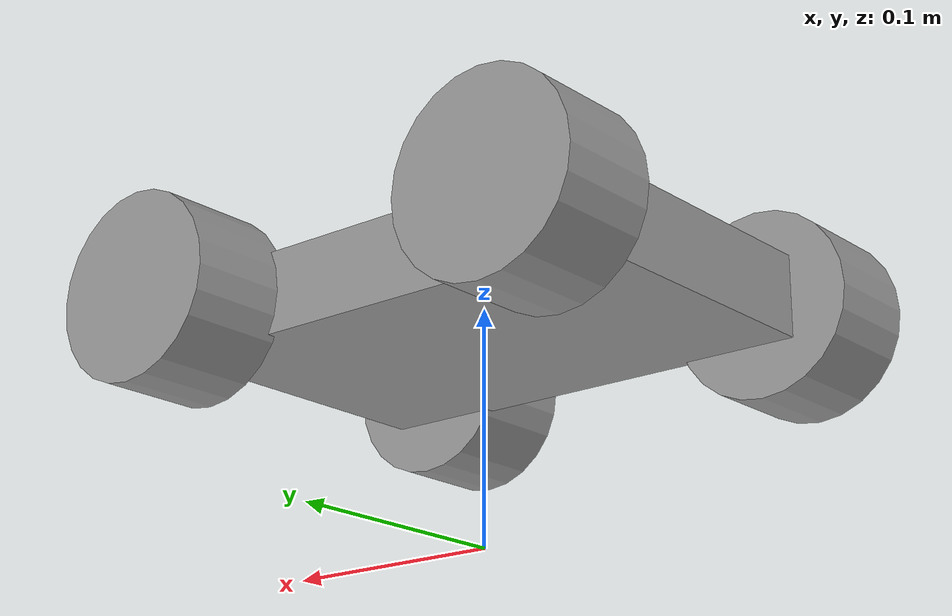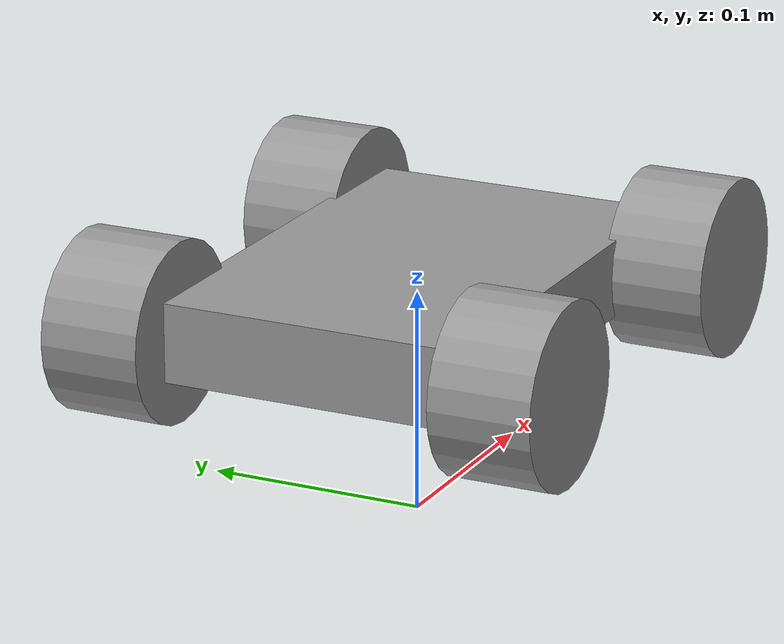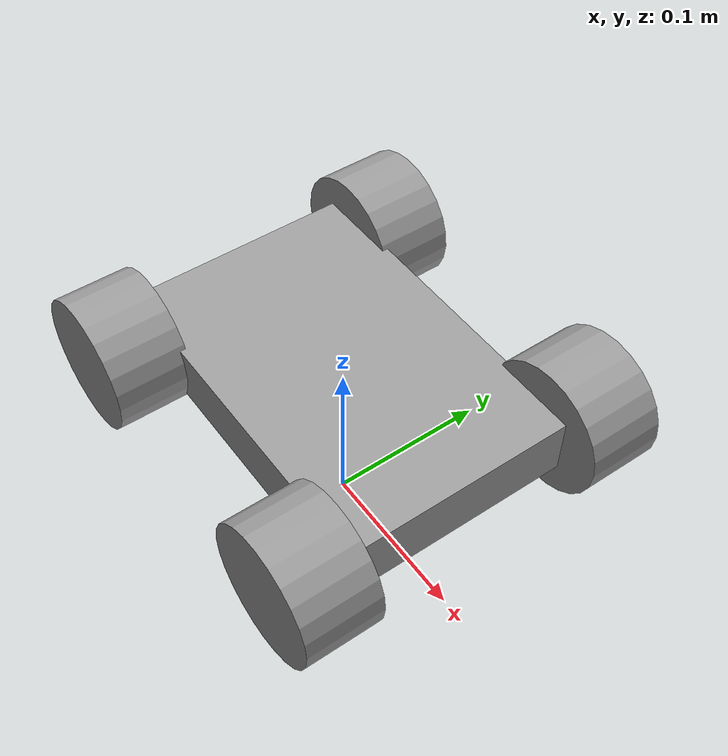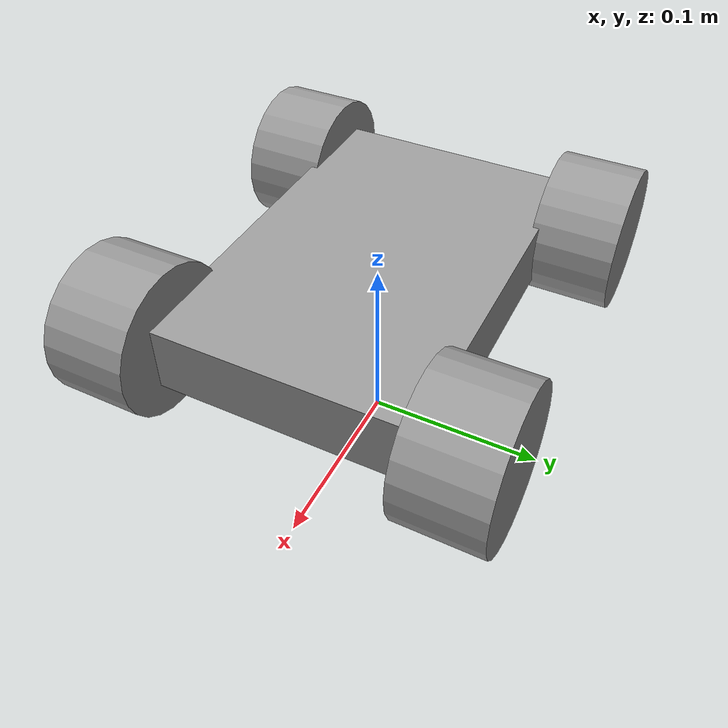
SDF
<?xml version='1.0'?>
<sdf version='1.7'>
  <model name='sa_car'>
    <link name='chassis'>
      <inertial>
        <mass>1.5</mass>
        <inertia>
          <ixx>0.002603125</ixx>
          <ixy>0</ixy>
          <ixz>0</ixz>
          <iyy>0.005665625</iyy>
          <iyz>0</iyz>
          <izz>0.0079625</izz>
        </inertia>
        <pose>0 0 0 0 -0 0</pose>
      </inertial>
      <self_collide>0</self_collide>
      <enable_wind>0</enable_wind>
      <kinematic>0</kinematic>
      <pose>0 0 0.1 0 -0 0</pose>
      <gravity>1</gravity>
      <visual name='visual'>
        <geometry>
          <box>
            <size>0.21 0.14 0.035</size>
          </box>
        </geometry>
        <material>
          <script>
            <name>Gazebo/Gray</name>
            <uri>file://media/materials/scripts/gazebo.material</uri>
          </script>
          <shader type='pixel'>
            <normal_map>__default__</normal_map>
          </shader>
          <ambient>0.3 0.3 0.3 1</ambient>
          <diffuse>0.7 0.7 0.7 1</diffuse>
          <specular>0.01 0.01 0.01 1</specular>
          <emissive>0 0 0 1</emissive>
        </material>
        <pose>0 0 0 0 -0 0</pose>
        <transparency>0</transparency>
        <cast_shadows>1</cast_shadows>
      </visual>
      <collision name='collision'>
        <laser_retro>0</laser_retro>
        <max_contacts>10</max_contacts>
        <pose>0 0 0 0 -0 0</pose>
        <geometry>
          <box>
            <size>0.21 0.14 0.035</size>
          </box>
        </geometry>
        <surface>
          <friction>
            <ode>
              <mu>1</mu>
              <mu2>1</mu2>
              <fdir1>0 0 0</fdir1>
              <slip1>0</slip1>
              <slip2>0</slip2>
            </ode>
            <torsional>
              <coefficient>1</coefficient>
              <patch_radius>0</patch_radius>
              <surface_radius>0</surface_radius>
              <use_patch_radius>1</use_patch_radius>
              <ode>
                <slip>0</slip>
              </ode>
            </torsional>
          </friction>
          <bounce>
            <restitution_coefficient>0</restitution_coefficient>
            <threshold>1e+06</threshold>
          </bounce>
          <contact>
            <collide_without_contact>0</collide_without_contact>
            <collide_without_contact_bitmask>1</collide_without_contact_bitmask>
            <collide_bitmask>1</collide_bitmask>
            <ode>
              <soft_cfm>0</soft_cfm>
              <soft_erp>0.2</soft_erp>
              <kp>1e+13</kp>
              <kd>1</kd>
              <max_vel>0.01</max_vel>
              <min_depth>0</min_depth>
            </ode>
            <bullet>
              <split_impulse>1</split_impulse>
              <split_impulse_penetration_threshold>-0.01</split_impulse_penetration_threshold>
              <soft_cfm>0</soft_cfm>
              <soft_erp>0.2</soft_erp>
              <kp>1e+13</kp>
              <kd>1</kd>
            </bullet>
          </contact>
        </surface>
      </collision>
    </link>
    <link name='front_left_steer_link'>
      <inertial>
        <mass>0.05</mass>
        <inertia>
          <ixx>8.33e-05</ixx>
          <ixy>0</ixy>
          <ixz>0</ixz>
          <iyy>8.33e-05</iyy>
          <iyz>0</iyz>
          <izz>8.33e-05</izz>
        </inertia>
        <pose>0 0 0 0 -0 0</pose>
      </inertial>
      <pose>0.0895 0.0685 0.1 0 -0 0</pose>
      <gravity>1</gravity>
      <self_collide>0</self_collide>
      <kinematic>0</kinematic>
      <enable_wind>0</enable_wind>
    </link>
    <link name='front_left_wheel'>
      <inertial>
        <mass>0.1</mass>
        <inertia>
          <ixx>5.7e-05</ixx>
          <ixy>0</ixy>
          <ixz>0</ixz>
          <iyy>5.7e-05</iyy>
          <iyz>0</iyz>
          <izz>8e-05</izz>
        </inertia>
        <pose>0 0 0 0 -0 0</pose>
      </inertial>
      <pose>0.0895 0.089 0.1 1.5707 -0 0</pose>
      <gravity>1</gravity>
      <self_collide>0</self_collide>
      <kinematic>0</kinematic>
      <enable_wind>0</enable_wind>
      <visual name='visual'>
        <pose>0 0 0 0 -0 0</pose>
        <geometry>
          <cylinder>
            <radius>0.04</radius>
            <length>0.045</length>
          </cylinder>
        </geometry>
        <material>
          <lighting>1</lighting>
          <script>
            <uri>file://media/materials/scripts/gazebo.material</uri>
            <name>Gazebo/Grey</name>
          </script>
          <shader type='pixel'>
            <normal_map>__default__</normal_map>
          </shader>
          <ambient>0.3 0.3 0.3 1</ambient>
          <diffuse>0.7 0.7 0.7 1</diffuse>
          <specular>0.01 0.01 0.01 1</specular>
          <emissive>0 0 0 1</emissive>
        </material>
        <transparency>0</transparency>
        <cast_shadows>1</cast_shadows>
      </visual>
      <collision name='collision'>
        <laser_retro>0</laser_retro>
        <max_contacts>10</max_contacts>
        <pose>0 0 0 0 -0 0</pose>
        <geometry>
          <cylinder>
            <radius>0.04</radius>
            <length>0.045</length>
          </cylinder>
        </geometry>
        <surface>
          <friction>
            <ode>
              <mu>1</mu>
              <mu2>1</mu2>
              <fdir1>0 0 1</fdir1>
              <slip1>0</slip1>
              <slip2>0</slip2>
            </ode>
            <torsional>
              <coefficient>1</coefficient>
              <patch_radius>0</patch_radius>
              <surface_radius>0</surface_radius>
              <use_patch_radius>1</use_patch_radius>
              <ode>
                <slip>0</slip>
              </ode>
            </torsional>
          </friction>
          <bounce>
            <restitution_coefficient>0</restitution_coefficient>
            <threshold>1e+06</threshold>
          </bounce>
          <contact>
            <collide_without_contact>0</collide_without_contact>
            <collide_without_contact_bitmask>1</collide_without_contact_bitmask>
            <collide_bitmask>1</collide_bitmask>
            <ode>
              <soft_cfm>0</soft_cfm>
              <soft_erp>0.2</soft_erp>
              <kp>1e+13</kp>
              <kd>1</kd>
              <max_vel>0.01</max_vel>
              <min_depth>0</min_depth>
            </ode>
            <bullet>
              <split_impulse>1</split_impulse>
              <split_impulse_penetration_threshold>-0.01</split_impulse_penetration_threshold>
              <soft_cfm>0</soft_cfm>
              <soft_erp>0.2</soft_erp>
              <kp>1e+13</kp>
              <kd>1</kd>
            </bullet>
          </contact>
        </surface>
      </collision>
    </link>
    <link name='front_right_steer_link'>
      <inertial>
        <mass>0.05</mass>
        <inertia>
          <ixx>8.33e-05</ixx>
          <ixy>0</ixy>
          <ixz>0</ixz>
          <iyy>8.33e-05</iyy>
          <iyz>0</iyz>
          <izz>8.33e-05</izz>
        </inertia>
        <pose>0 0 0 0 -0 0</pose>
      </inertial>
      <pose>0.0895 -0.0685 0.1 0 -0 0</pose>
      <gravity>1</gravity>
      <self_collide>0</self_collide>
      <kinematic>0</kinematic>
      <enable_wind>0</enable_wind>
    </link>
    <link name='front_right_wheel'>
      <inertial>
        <mass>0.1</mass>
        <inertia>
          <ixx>5.7e-05</ixx>
          <ixy>0</ixy>
          <ixz>0</ixz>
          <iyy>5.7e-05</iyy>
          <iyz>0</iyz>
          <izz>8e-05</izz>
        </inertia>
        <pose>0 0 0 0 -0 0</pose>
      </inertial>
      <pose>0.0895 -0.089 0.1 1.5707 -0 0</pose>
      <gravity>1</gravity>
      <self_collide>0</self_collide>
      <kinematic>0</kinematic>
      <enable_wind>0</enable_wind>
      <visual name='visual'>
        <pose>0 0 0 0 -0 0</pose>
        <geometry>
          <cylinder>
            <radius>0.04</radius>
            <length>0.045</length>
          </cylinder>
        </geometry>
        <material>
          <lighting>1</lighting>
          <script>
            <uri>file://media/materials/scripts/gazebo.material</uri>
            <name>Gazebo/Grey</name>
          </script>
          <shader type='pixel'>
            <normal_map>__default__</normal_map>
          </shader>
          <ambient>0.3 0.3 0.3 1</ambient>
          <diffuse>0.7 0.7 0.7 1</diffuse>
          <specular>0.01 0.01 0.01 1</specular>
          <emissive>0 0 0 1</emissive>
        </material>
        <transparency>0</transparency>
        <cast_shadows>1</cast_shadows>
      </visual>
      <collision name='collision'>
        <laser_retro>0</laser_retro>
        <max_contacts>10</max_contacts>
        <pose>0 0 0 0 -0 0</pose>
        <geometry>
          <cylinder>
            <radius>0.04</radius>
            <length>0.045</length>
          </cylinder>
        </geometry>
        <surface>
          <friction>
            <ode>
              <mu>1</mu>
              <mu2>1</mu2>
              <fdir1>0 0 1</fdir1>
              <slip1>0</slip1>
              <slip2>0</slip2>
            </ode>
            <torsional>
              <coefficient>1</coefficient>
              <patch_radius>0</patch_radius>
              <surface_radius>0</surface_radius>
              <use_patch_radius>1</use_patch_radius>
              <ode>
                <slip>0</slip>
              </ode>
            </torsional>
          </friction>
          <bounce>
            <restitution_coefficient>0</restitution_coefficient>
            <threshold>1e+06</threshold>
          </bounce>
          <contact>
            <collide_without_contact>0</collide_without_contact>
            <collide_without_contact_bitmask>1</collide_without_contact_bitmask>
            <collide_bitmask>1</collide_bitmask>
            <ode>
              <soft_cfm>0</soft_cfm>
              <soft_erp>0.2</soft_erp>
              <kp>1e+13</kp>
              <kd>1</kd>
              <max_vel>0.01</max_vel>
              <min_depth>0</min_depth>
            </ode>
            <bullet>
              <split_impulse>1</split_impulse>
              <split_impulse_penetration_threshold>-0.01</split_impulse_penetration_threshold>
              <soft_cfm>0</soft_cfm>
              <soft_erp>0.2</soft_erp>
              <kp>1e+13</kp>
              <kd>1</kd>
            </bullet>
          </contact>
        </surface>
      </collision>
    </link>
    <link name='rear_left_wheel'>
      <inertial>
        <mass>0.1</mass>
        <inertia>
          <ixx>5.7e-05</ixx>
          <ixy>0</ixy>
          <ixz>0</ixz>
          <iyy>5.7e-05</iyy>
          <iyz>0</iyz>
          <izz>8e-05</izz>
        </inertia>
        <pose>0 0 0 0 -0 0</pose>
      </inertial>
      <pose>-0.0895 0.089 0.1 1.5707 -0 0</pose>
      <gravity>1</gravity>
      <self_collide>0</self_collide>
      <kinematic>0</kinematic>
      <enable_wind>0</enable_wind>
      <visual name='visual'>
        <pose>0 0 0 0 -0 0</pose>
        <geometry>
          <cylinder>
            <radius>0.04</radius>
            <length>0.045</length>
          </cylinder>
        </geometry>
        <material>
          <lighting>1</lighting>
          <script>
            <uri>file://media/materials/scripts/gazebo.material</uri>
            <name>Gazebo/Grey</name>
          </script>
          <shader type='pixel'>
            <normal_map>__default__</normal_map>
          </shader>
          <ambient>0.3 0.3 0.3 1</ambient>
          <diffuse>0.7 0.7 0.7 1</diffuse>
          <specular>0.01 0.01 0.01 1</specular>
          <emissive>0 0 0 1</emissive>
        </material>
        <transparency>0</transparency>
        <cast_shadows>1</cast_shadows>
      </visual>
      <collision name='collision'>
        <laser_retro>0</laser_retro>
        <max_contacts>10</max_contacts>
        <pose>0 0 0 0 -0 0</pose>
        <geometry>
          <cylinder>
            <radius>0.04</radius>
            <length>0.045</length>
          </cylinder>
        </geometry>
        <surface>
          <friction>
            <ode>
              <mu>1</mu>
              <mu2>1</mu2>
              <fdir1>0 0 1</fdir1>
              <slip1>0</slip1>
              <slip2>0</slip2>
            </ode>
            <torsional>
              <coefficient>1</coefficient>
              <patch_radius>0</patch_radius>
              <surface_radius>0</surface_radius>
              <use_patch_radius>1</use_patch_radius>
              <ode>
                <slip>0</slip>
              </ode>
            </torsional>
          </friction>
          <bounce>
            <restitution_coefficient>0</restitution_coefficient>
            <threshold>1e+06</threshold>
          </bounce>
          <contact>
            <collide_without_contact>0</collide_without_contact>
            <collide_without_contact_bitmask>1</collide_without_contact_bitmask>
            <collide_bitmask>1</collide_bitmask>
            <ode>
              <soft_cfm>0</soft_cfm>
              <soft_erp>0.2</soft_erp>
              <kp>1e+13</kp>
              <kd>1</kd>
              <max_vel>0.01</max_vel>
              <min_depth>0</min_depth>
            </ode>
            <bullet>
              <split_impulse>1</split_impulse>
              <split_impulse_penetration_threshold>-0.01</split_impulse_penetration_threshold>
              <soft_cfm>0</soft_cfm>
              <soft_erp>0.2</soft_erp>
              <kp>1e+13</kp>
              <kd>1</kd>
            </bullet>
          </contact>
        </surface>
      </collision>
    </link>
    <link name='rear_right_wheel'>
      <inertial>
        <mass>0.1</mass>
        <inertia>
          <ixx>5.7e-05</ixx>
          <ixy>0</ixy>
          <ixz>0</ixz>
          <iyy>5.7e-05</iyy>
          <iyz>0</iyz>
          <izz>8e-05</izz>
        </inertia>
        <pose>0 0 0 0 -0 0</pose>
      </inertial>
      <pose>-0.0895 -0.089 0.1 1.5707 -0 0</pose>
      <gravity>1</gravity>
      <self_collide>0</self_collide>
      <kinematic>0</kinematic>
      <enable_wind>0</enable_wind>
      <visual name='visual'>
        <pose>0 0 0 0 -0 0</pose>
        <geometry>
          <cylinder>
            <radius>0.04</radius>
            <length>0.045</length>
          </cylinder>
        </geometry>
        <material>
          <lighting>1</lighting>
          <script>
            <uri>file://media/materials/scripts/gazebo.material</uri>
            <name>Gazebo/Grey</name>
          </script>
          <shader type='pixel'>
            <normal_map>__default__</normal_map>
          </shader>
          <ambient>0.3 0.3 0.3 1</ambient>
          <diffuse>0.7 0.7 0.7 1</diffuse>
          <specular>0.01 0.01 0.01 1</specular>
          <emissive>0 0 0 1</emissive>
        </material>
        <transparency>0</transparency>
        <cast_shadows>1</cast_shadows>
      </visual>
      <collision name='collision'>
        <laser_retro>0</laser_retro>
        <max_contacts>10</max_contacts>
        <pose>0 0 0 0 -0 0</pose>
        <geometry>
          <cylinder>
            <radius>0.04</radius>
            <length>0.045</length>
          </cylinder>
        </geometry>
        <surface>
          <friction>
            <ode>
              <mu>1</mu>
              <mu2>1</mu2>
              <fdir1>0 0 1</fdir1>
              <slip1>0</slip1>
              <slip2>0</slip2>
            </ode>
            <torsional>
              <coefficient>1</coefficient>
              <patch_radius>0</patch_radius>
              <surface_radius>0</surface_radius>
              <use_patch_radius>1</use_patch_radius>
              <ode>
                <slip>0</slip>
              </ode>
            </torsional>
          </friction>
          <bounce>
            <restitution_coefficient>0</restitution_coefficient>
            <threshold>1e+06</threshold>
          </bounce>
          <contact>
            <collide_without_contact>0</collide_without_contact>
            <collide_without_contact_bitmask>1</collide_without_contact_bitmask>
            <collide_bitmask>1</collide_bitmask>
            <ode>
              <soft_cfm>0</soft_cfm>
              <soft_erp>0.2</soft_erp>
              <kp>1e+13</kp>
              <kd>1</kd>
              <max_vel>0.01</max_vel>
              <min_depth>0</min_depth>
            </ode>
            <bullet>
              <split_impulse>1</split_impulse>
              <split_impulse_penetration_threshold>-0.01</split_impulse_penetration_threshold>
              <soft_cfm>0</soft_cfm>
              <soft_erp>0.2</soft_erp>
              <kp>1e+13</kp>
              <kd>1</kd>
            </bullet>
          </contact>
        </surface>
      </collision>
    </link>
    <joint name='roll_front_left' type='revolute'>
      <parent>front_left_steer_link</parent>
      <child>front_left_wheel</child>
      <pose>0 0 0 0 -0 0</pose>
      <axis>
        <xyz>0 0 -1</xyz>
        <limit>
          <lower>-1.79769e+308</lower>
          <upper>1.79769e+308</upper>
          <effort>1.0</effort>
          <velocity>50</velocity>
        </limit>
        <dynamics>
          <spring_reference>0</spring_reference>
          <spring_stiffness>0</spring_stiffness>
          <damping>0.002</damping>
          <friction>0.01</friction>
        </dynamics>
      </axis>
      <physics>
        <ode>
          <limit>
            <cfm>0</cfm>
            <erp>0.2</erp>
          </limit>
          <suspension>
            <cfm>0</cfm>
            <erp>0.2</erp>
          </suspension>
        </ode>
      </physics>
    </joint>
    <joint name='roll_front_right' type='revolute'>
      <parent>front_right_steer_link</parent>
      <child>front_right_wheel</child>
      <pose>0 0 0 0 -0 0</pose>
      <axis>
        <xyz>0 0 -1</xyz>
        <limit>
          <lower>-1.79769e+308</lower>
          <upper>1.79769e+308</upper>
          <effort>1.0</effort>
          <velocity>50</velocity>
        </limit>
        <dynamics>
          <spring_reference>0</spring_reference>
          <spring_stiffness>0</spring_stiffness>
          <damping>0.002</damping>
          <friction>0.01</friction>
        </dynamics>
      </axis>
      <physics>
        <ode>
          <limit>
            <cfm>0</cfm>
            <erp>0.2</erp>
          </limit>
          <suspension>
            <cfm>0</cfm>
            <erp>0.2</erp>
          </suspension>
        </ode>
      </physics>
    </joint>
    <joint name='roll_rear_left' type='revolute'>
      <parent>chassis</parent>
      <child>rear_left_wheel</child>
      <pose>0 0 0 0 0 0</pose>
      <axis>
        <xyz>0 0 -1</xyz>
        <limit>
          <lower>-1.79769e+308</lower>
          <upper>1.79769e+308</upper>
          <effort>1.0</effort>
          <velocity>50</velocity>
        </limit>
        <dynamics>
          <spring_reference>0</spring_reference>
          <spring_stiffness>0</spring_stiffness>
          <damping>0.002</damping>
          <friction>0.01</friction>
        </dynamics>
      </axis>
      <physics>
        <ode>
          <limit>
            <cfm>0</cfm>
            <erp>0.2</erp>
          </limit>
          <suspension>
            <cfm>0</cfm>
            <erp>0.2</erp>
          </suspension>
        </ode>
      </physics>
    </joint>
    <joint name='roll_rear_right' type='revolute'>
      <parent>chassis</parent>
      <child>rear_right_wheel</child>
      <pose>0 0 0 0 0 0</pose>
      <axis>
        <xyz>0 0 -1</xyz>
        <limit>
          <lower>-1.79769e+308</lower>
          <upper>1.79769e+308</upper>
          <effort>1.0</effort>
          <velocity>50</velocity>
        </limit>
        <dynamics>
          <spring_reference>0</spring_reference>
          <spring_stiffness>0</spring_stiffness>
          <damping>0.002</damping>
          <friction>0.01</friction>
        </dynamics>
      </axis>
      <physics>
        <ode>
          <limit>
            <cfm>0</cfm>
            <erp>0.2</erp>
          </limit>
          <suspension>
            <cfm>0</cfm>
            <erp>0.2</erp>
          </suspension>
        </ode>
      </physics>
    </joint>
    <joint name='steer_left' type='revolute'>
      <parent>chassis</parent>
      <child>front_left_steer_link</child>
      <pose>0 0 0 0 -0 0</pose>
      <axis>
        <xyz>0 0 1</xyz>
        <limit>
          <lower>-0.7</lower>
          <upper>0.7</upper>
          <effort>5</effort>
          <velocity>3</velocity>
        </limit>
        <dynamics>
          <spring_reference>0</spring_reference>
          <spring_stiffness>0</spring_stiffness>
          <damping>0.03</damping>
          <friction>0</friction>
        </dynamics>
      </axis>
      <physics>
        <ode>
          <limit>
            <cfm>0</cfm>
            <erp>0.2</erp>
          </limit>
          <suspension>
            <cfm>0</cfm>
            <erp>0.2</erp>
          </suspension>
        </ode>
      </physics>
    </joint>
    <joint name='steer_right' type='revolute'>
      <parent>chassis</parent>
      <child>front_right_steer_link</child>
      <pose>0 0 0 0 -0 0</pose>
      <axis>
        <xyz>0 0 1</xyz>
        <limit>
          <lower>-0.7</lower>
          <upper>0.7</upper>
          <effort>5</effort>
          <velocity>3</velocity>
        </limit>
        <dynamics>
          <spring_reference>0</spring_reference>
          <spring_stiffness>0</spring_stiffness>
          <damping>0.03</damping>
          <friction>0</friction>
        </dynamics>
      </axis>
      <physics>
        <ode>
          <limit>
            <cfm>0</cfm>
            <erp>0.2</erp>
          </limit>
          <suspension>
            <cfm>0</cfm>
            <erp>0.2</erp>
          </suspension>
        </ode>
      </physics>
    </joint>
    <static>0</static>
    <allow_auto_disable>1</allow_auto_disable>
    <plugin name='gazebo_ros_ackermann_drive' filename='libgazebo_ros_ackermann_drive.so'>
      <update_rate>100.0</update_rate>
      <front_left_joint>roll_front_left</front_left_joint>
      <front_right_joint>roll_front_right</front_right_joint>
      <rear_left_joint>roll_rear_left</rear_left_joint>
      <rear_right_joint>roll_rear_right</rear_right_joint>
      <left_steering_joint>steer_left</left_steering_joint>
      <right_steering_joint>steer_right</right_steering_joint>
      <max_steer>0.6458</max_steer>
      <max_steering_angle>7.85</max_steering_angle>
      <max_speed>2.0</max_speed>
      <left_steering_pid_gain>2 0 0.05</left_steering_pid_gain>
      <left_steering_i_range>0 0</left_steering_i_range>
      <right_steering_pid_gain>2 0 0.05</right_steering_pid_gain>
      <right_steering_i_range>0 0</right_steering_i_range>
      <linear_velocity_pid_gain>1.0 0.5 0.1</linear_velocity_pid_gain>
      <linear_velocity_i_range>-0.3 0.3</linear_velocity_i_range>
      <publish_odom>1</publish_odom>
      <publish_odom_tf>1</publish_odom_tf>
      <publish_wheel_tf>1</publish_wheel_tf>
      <odometry_frame>odom</odometry_frame>
      <robot_base_frame>chassis</robot_base_frame>
    </plugin>
  </model>
</sdf>
